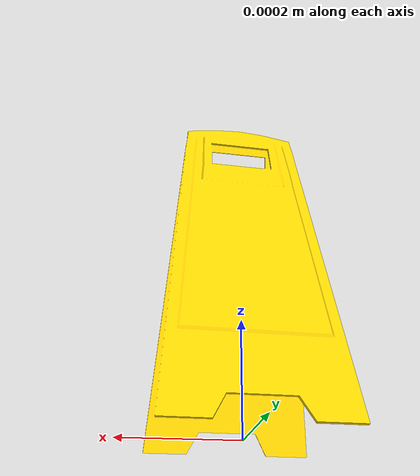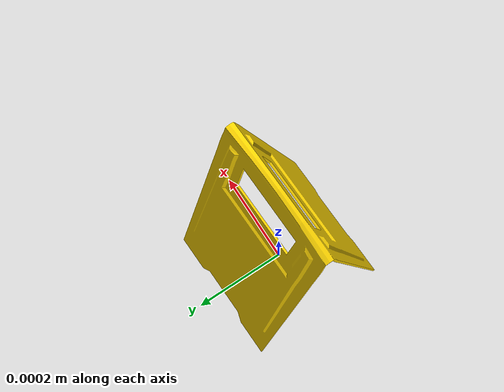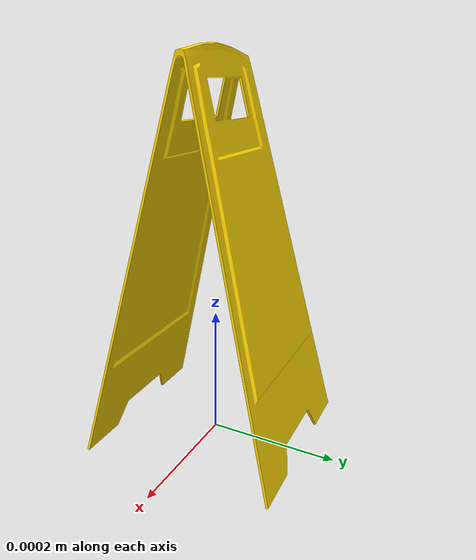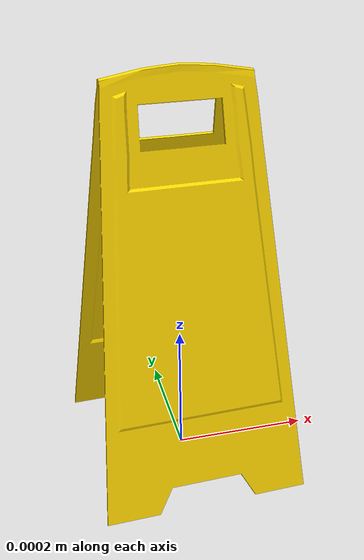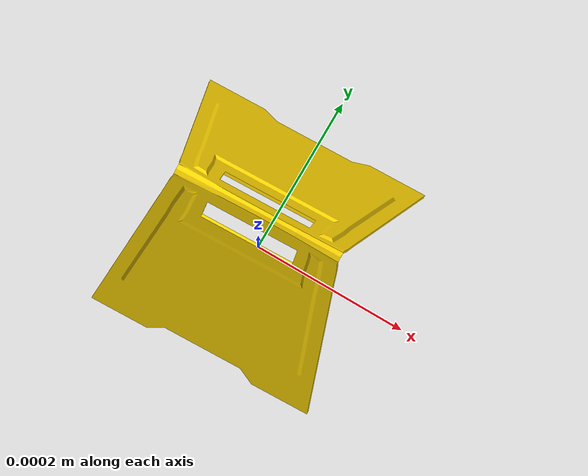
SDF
<?xml version="1.0" ?>
<sdf version="1.6">
  <model name="caution_sign">
    <static>false</static>
    <link name="link">
      <inertial>
        <mass>0.5</mass>
        <inertia>
          <ixx>0.015</ixx><ixy>0</ixy><ixz>0</ixz>
          <iyy>0.015</iyy><iyz>0</iyz><izz>0.004</izz>
        </inertia>
      </inertial>
      <collision name="collision">
        <geometry>
          <mesh>
            <uri>model://Sign_model/meshes/Sign_model.stl</uri>
            <scale>0.001 0.001 0.001</scale>
          </mesh>
        </geometry>
      </collision>
      <visual name="visual">
        <geometry>
          <mesh>
            <uri>model://Sign_model/meshes/Sign_model.stl</uri>
            <scale>0.001 0.001 0.001</scale>
          </mesh>
        </geometry>
        <material>
          <ambient>1.0 0.84 0.0 1.0</ambient>
          <diffuse>1.0 0.84 0.0 1.0</diffuse>
          <specular>0.1 0.1 0.1 1.0</specular>
        </material>
      </visual>
    </link>
  </model>
</sdf>
